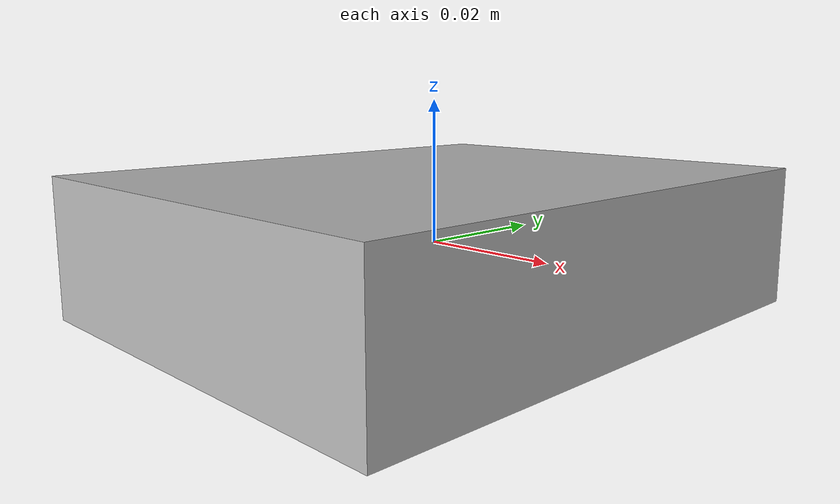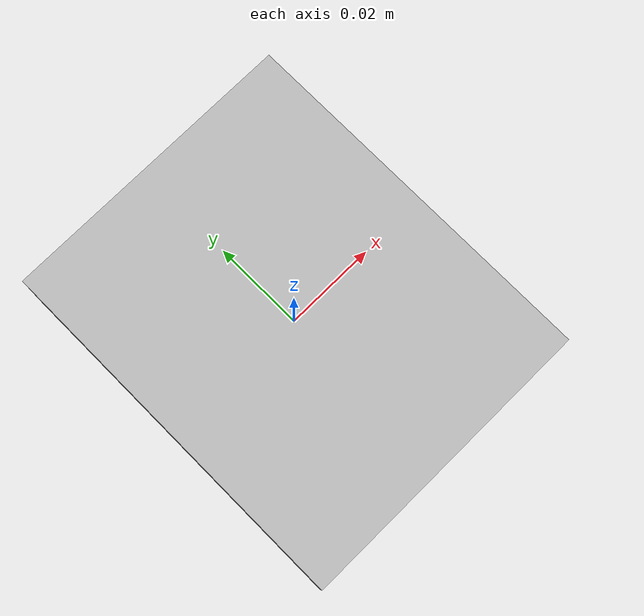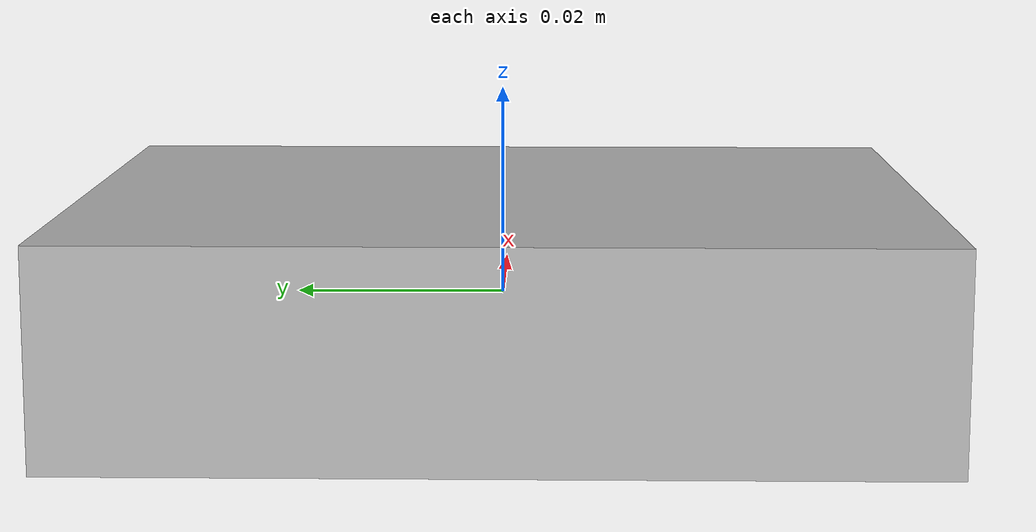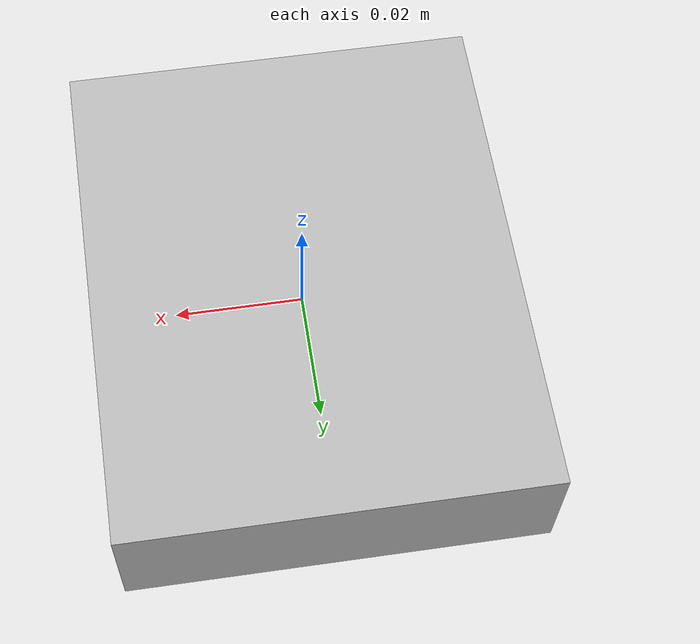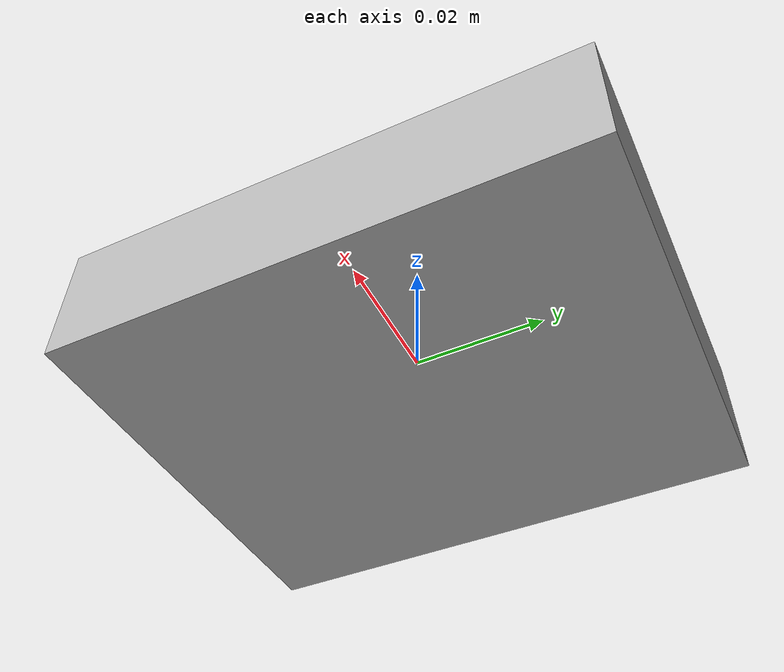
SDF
<?xml version='1.0'?>
<sdf version="1.4">
<model name="ellipta">
    <static>false</static>
    <link name="link">
      <pose>0 0 0 0 0 0</pose>
      <collision name="collision">
        <geometry>
          <box>
            <size>0.01 0.01 0.02</size>
          </box>
        </geometry>
      </collision>
      <visual name="visual">
        <geometry>
          <box>
            <size>0.065 0.08 0.02</size>
          </box>
        </geometry>
      </visual>
    </link>
  </model>
</sdf>
